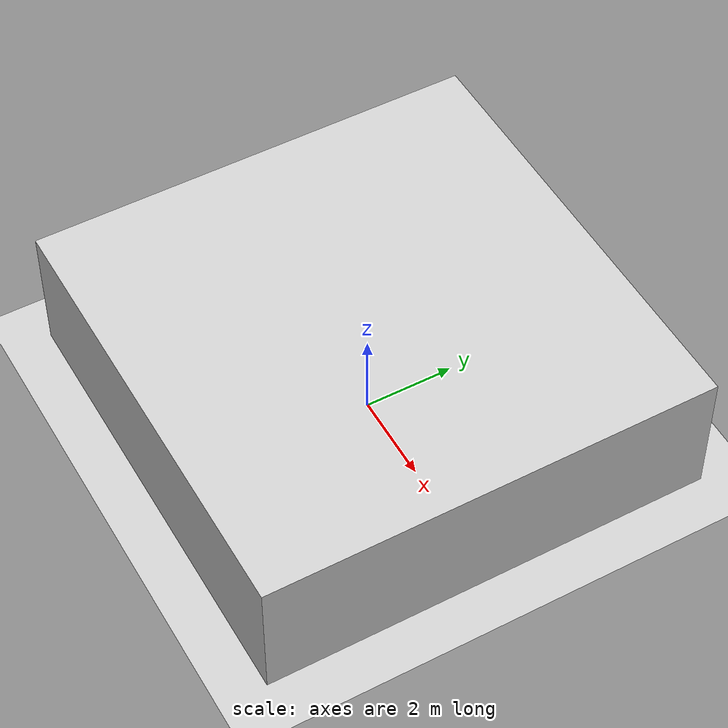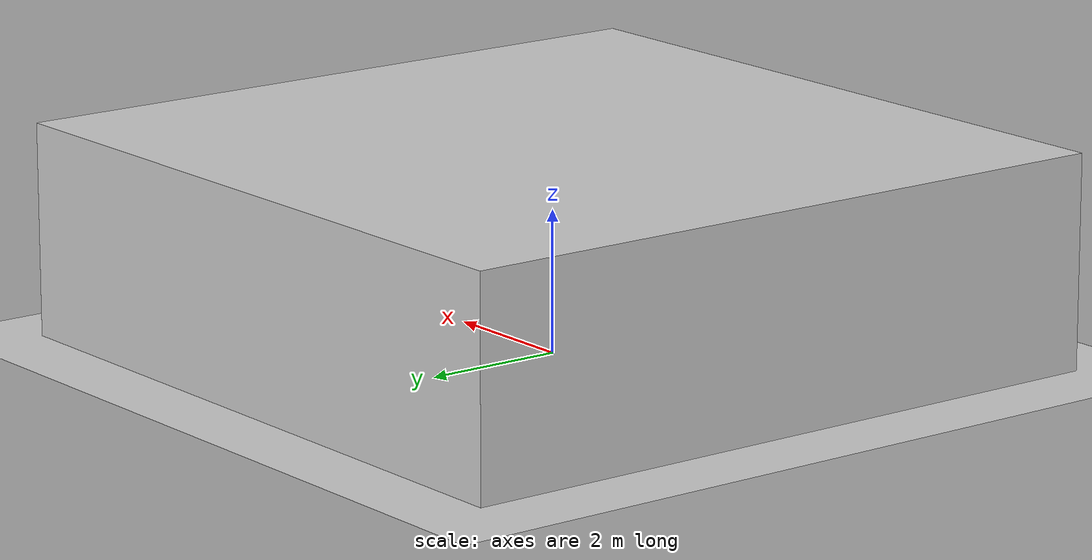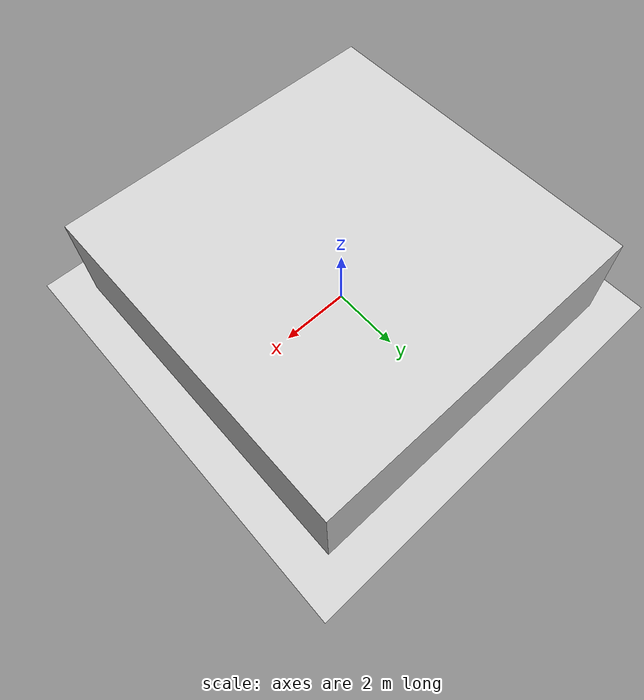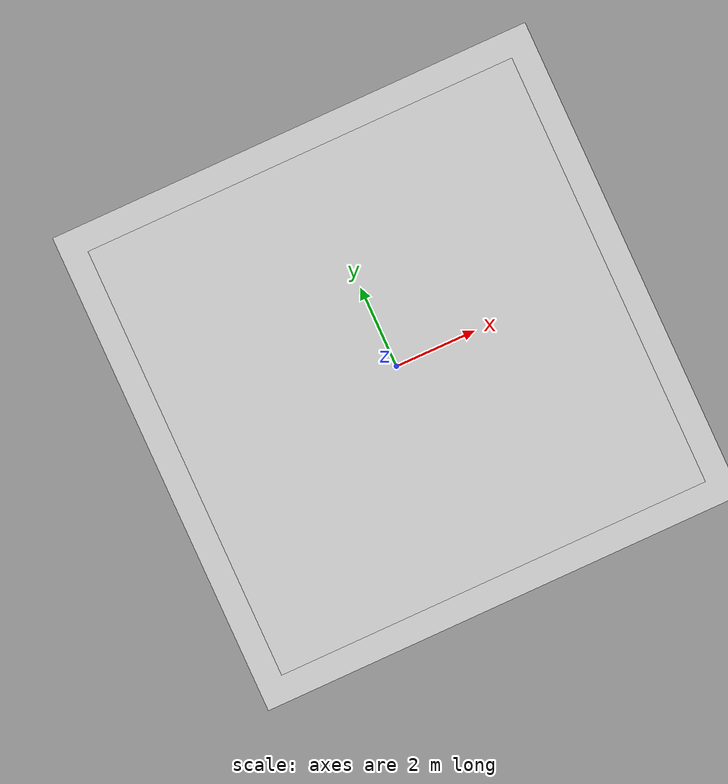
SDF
<?xml version="1.0" ?>
<sdf version="1.7">
  <world name="humanoid_world">
    <!-- Include the default sun and sky -->
    <include>
      <uri>model://sun</uri>
    </include>

    <include>
      <uri>model://ground_plane</uri>
    </include>

    <!-- Physics engine configuration -->
    <physics name="1ms" type="ode">
      <max_step_size>0.001</max_step_size>
      <real_time_factor>1.0</real_time_factor>
      <real_time_update_rate>1000.0</real_time_update_rate>
      <gravity>0 0 -9.8</gravity>
    </physics>

    <!-- Simple room environment -->
    <model name="room">
      <static>true</static>
      <link name="room_link">
        <visual name="walls_visual">
          <geometry>
            <box>
              <size>10 10 3</size>
            </box>
          </geometry>
          <material>
            <ambient>0.8 0.8 0.8 1</ambient>
            <diffuse>0.8 0.8 0.8 1</diffuse>
          </material>
        </visual>
        <collision name="walls_collision">
          <geometry>
            <box>
              <size>10 10 3</size>
            </box>
          </geometry>
        </collision>
        <pose>0 0 1.5 0 0 0</pose>
      </link>
    </model>

    <!-- Furniture for the environment -->
    <model name="table">
      <pose>2 0 0.4 0 0 0</pose>
      <link name="table_base">
        <collision name="collision">
          <geometry>
            <box>
              <size>1.0 0.6 0.8</size>
            </box>
          </geometry>
        </collision>
        <visual name="visual">
          <geometry>
            <box>
              <size>1.0 0.6 0.8</size>
            </box>
          </geometry>
          <material>
            <ambient>0.6 0.4 0.2 1</ambient>
            <diffuse>0.6 0.4 0.2 1</diffuse>
          </material>
        </visual>
        <self_collide>0</self_collide>
        <kinematic>0</kinematic>
        <gravity>1</gravity>
      </link>
    </model>

    <!-- Add a simple box obstacle -->
    <model name="box_obstacle">
      <pose>-1.5 -1.5 0.2 0 0 0</pose>
      <link name="box_link">
        <collision name="collision">
          <geometry>
            <box>
              <size>0.4 0.4 0.4</size>
            </box>
          </geometry>
        </collision>
        <visual name="visual">
          <geometry>
            <box>
              <size>0.4 0.4 0.4</size>
            </box>
          </geometry>
          <material>
            <ambient>0.2 0.6 0.8 1</ambient>
            <diffuse>0.2 0.6 0.8 1</diffuse>
          </material>
        </visual>
        <self_collide>0</self_collide>
        <kinematic>0</kinematic>
        <gravity>1</gravity>
      </link>
    </model>

    <!-- Lighting -->
    <light name="spotlight" type="spot">
      <pose>0 0 5 0 0 0</pose>
      <diffuse>1 1 1 1</diffuse>
      <specular>0.5 0.5 0.5 1</specular>
      <attenuation>
        <range>10</range>
        <constant>0.9</constant>
        <linear>0.01</linear>
        <quadratic>0.001</quadratic>
      </attenuation>
      <direction>-0.5 0 -1</direction>
      <spot>
        <inner_angle>0.1</inner_angle>
        <outer_angle>0.5</outer_angle>
        <falloff>0.8</falloff>
      </spot>
    </light>
  </world>
</sdf>
